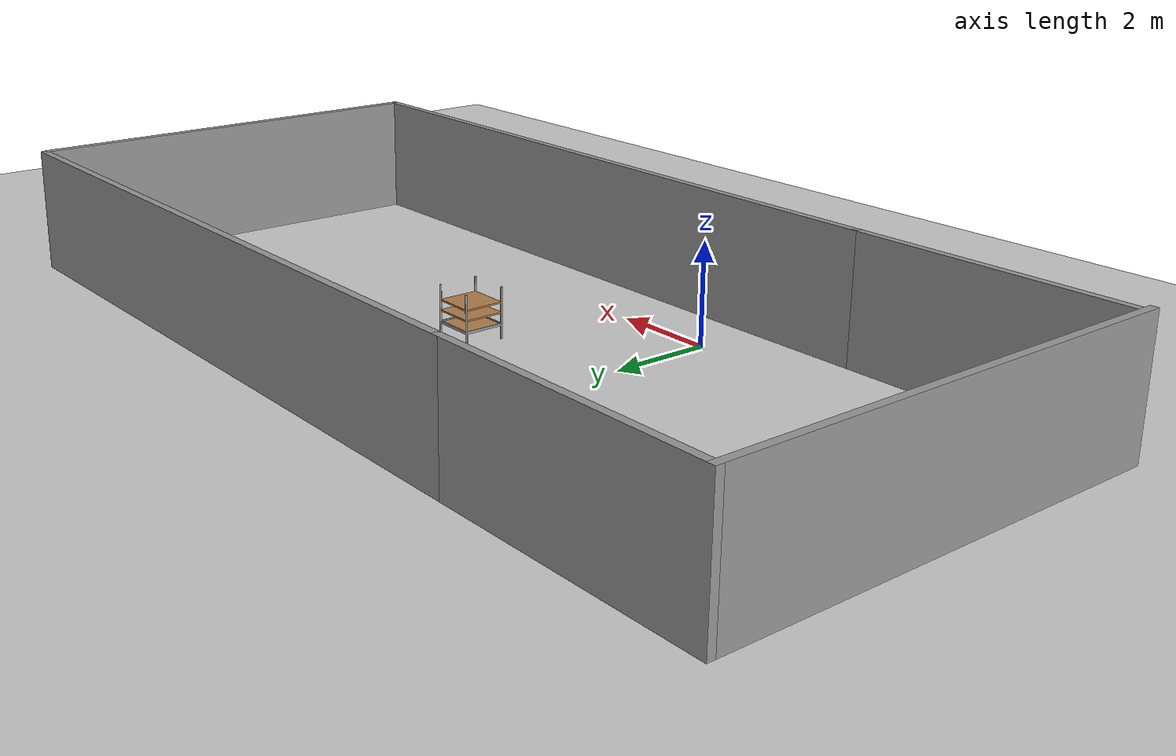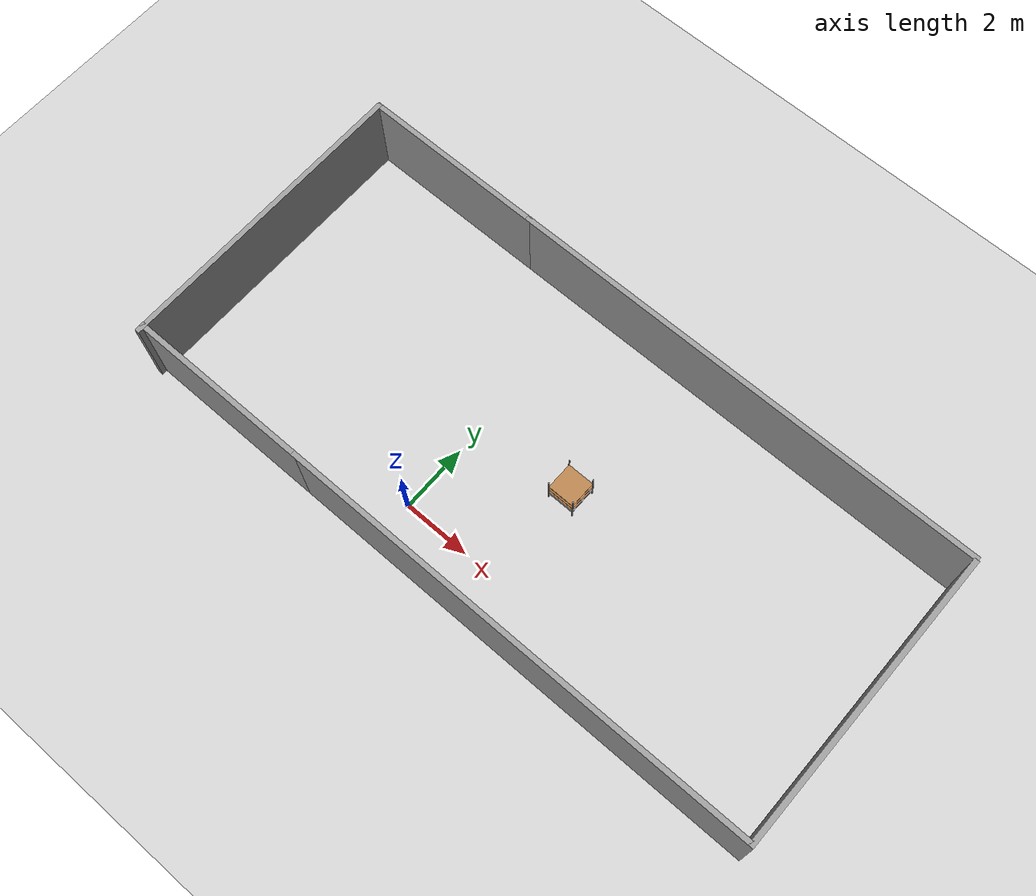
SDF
<sdf version="1.7">
 <world name="default">
  <model name="ground_plane">
   <static>1</static>
   <link name="link">
    <collision name="collision">
     <geometry><plane><normal>0 0 1</normal><size>100 100</size></plane></geometry>
     <surface><friction><ode><mu>100</mu><mu2>50</mu2></ode></friction></surface>
    </collision>
    <visual name="visual">
     <cast_shadows>0</cast_shadows>
     <geometry><plane><normal>0 0 1</normal><size>100 100</size></plane></geometry>
     <material>
      <script><uri>file://media/materials/scripts/gazebo.material</uri><name>Gazebo/Grey</name></script>
     </material>
    </visual>
   </link>
  </model>
  <model name="warehouse_pallet_modified_80_0_clone_2">
   <link name="warehouse_pallet::link">
    <pose>-0.115127 9.2e-05 0 0 -0 1.57</pose>
    <inertial>
     <inertia>
      <ixx>0.0267042</ixx>
      <ixy>0</ixy>
      <ixz>0</ixz>
      <iyy>0.0937875</iyy>
      <iyz>0</iyz>
      <izz>0.120417</izz>
     </inertia>
     <mass>0.5</mass>
    </inertial>
    <visual name="front_right_leg">
     <pose>0.4 -0.4 0.4 0 -0 0</pose>
     <geometry><cylinder><radius>0.02</radius><length>1</length></cylinder></geometry>
     <material>
      <script><uri>file://media/materials/scripts/gazebo.material</uri><name>Gazebo/Grey</name></script>
      <shader type="pixel"><normal_map>__default__</normal_map></shader>
      <ambient>0.3 0.3 0.3 1</ambient>
      <diffuse>0.7 0.7 0.7 1</diffuse>
      <specular>0.01 0.01 0.01 1</specular>
      <emissive>0 0 0 1</emissive>
     </material>
    </visual>
    <visual name="back_left_leg">
     <pose>-0.4 0.4 0.4 0 -0 0</pose>
     <geometry><cylinder><radius>0.02</radius><length>1</length></cylinder></geometry>
     <material>
      <script><uri>file://media/materials/scripts/gazebo.material</uri><name>Gazebo/Grey</name></script>
      <shader type="pixel"><normal_map>__default__</normal_map></shader>
      <ambient>0.3 0.3 0.3 1</ambient>
      <diffuse>0.7 0.7 0.7 1</diffuse>
      <specular>0.01 0.01 0.01 1</specular>
      <emissive>0 0 0 1</emissive>
     </material>
    </visual>
    <visual name="visual1">
     <pose>0 0 0.165 0 -0 0</pose>
     <geometry><box><size>0.8 0.8 0.03</size></box></geometry>
     <material>
      <script><uri>file://media/materials/scripts/gazebo.material</uri><name>Gazebo/Wood</name></script>
      <shader type="pixel"><normal_map>__default__</normal_map></shader>
      <ambient>1 1 1 1</ambient>
      <diffuse>1 1 1 1</diffuse>
      <specular>0.2 0.2 0.2 1</specular>
      <emissive>0 0 0 1</emissive>
     </material>
    </visual>
    <visual name="front_left_leg">
     <pose>0.4 0.4 0.4 0 -0 0</pose>
     <geometry><cylinder><radius>0.02</radius><length>1</length></cylinder></geometry>
     <material>
      <script><uri>file://media/materials/scripts/gazebo.material</uri><name>Gazebo/Grey</name></script>
      <shader type="pixel"><normal_map>__default__</normal_map></shader>
      <ambient>0.3 0.3 0.3 1</ambient>
      <diffuse>0.7 0.7 0.7 1</diffuse>
      <specular>0.01 0.01 0.01 1</specular>
      <emissive>0 0 0 1</emissive>
     </material>
    </visual>
    <visual name="holding2_visual">
     <pose>0 -0.4 0.175 0 -0 0</pose>
     <geometry><box><size>0.8 0.02 0.05</size></box></geometry>
     <material>
      <script><uri>file://media/materials/scripts/gazebo.material</uri><name>Gazebo/Grey</name></script>
      <shader type="pixel"><normal_map>__default__</normal_map></shader>
      <ambient>0.3 0.3 0.3 1</ambient>
      <diffuse>0.7 0.7 0.7 1</diffuse>
      <specular>0.01 0.01 0.01 1</specular>
      <emissive>0 0 0 1</emissive>
     </material>
    </visual>
    <visual name="visual2">
     <pose>0 0 0.4 0 -0 0</pose>
     <geometry><box><size>0.8 0.8 0.03</size></box></geometry>
     <material>
      <script><uri>file://media/materials/scripts/gazebo.material</uri><name>Gazebo/Wood</name></script>
      <shader type="pixel"><normal_map>__default__</normal_map></shader>
      <ambient>1 1 1 1</ambient>
      <diffuse>1 1 1 1</diffuse>
      <specular>0.2 0.2 0.2 1</specular>
      <emissive>0 0 0 1</emissive>
     </material>
    </visual>
    <visual name="holding4_visual">
     <pose>-0.4 0 0.175 0 -0 1.57</pose>
     <geometry><box><size>0.8 0.02 0.05</size></box></geometry>
     <material>
      <script><uri>file://media/materials/scripts/gazebo.material</uri><name>Gazebo/Grey</name></script>
      <shader type="pixel"><normal_map>__default__</normal_map></shader>
      <ambient>0.3 0.3 0.3 1</ambient>
      <diffuse>0.7 0.7 0.7 1</diffuse>
      <specular>0.01 0.01 0.01 1</specular>
      <emissive>0 0 0 1</emissive>
     </material>
    </visual>
    <visual name="holding1_visual">
     <pose>0 0.4 0.175 0 -0 0</pose>
     <geometry><box><size>0.8 0.02 0.05</size></box></geometry>
     <material>
      <script><uri>file://media/materials/scripts/gazebo.material</uri><name>Gazebo/Grey</name></script>
      <shader type="pixel"><normal_map>__default__</normal_map></shader>
      <ambient>0.3 0.3 0.3 1</ambient>
      <diffuse>0.7 0.7 0.7 1</diffuse>
      <specular>0.01 0.01 0.01 1</specular>
      <emissive>0 0 0 1</emissive>
     </material>
    </visual>
    <visual name="back_right_leg">
     <pose>-0.4 -0.4 0.4 0 -0 0</pose>
     <geometry><cylinder><radius>0.02</radius><length>1</length></cylinder></geometry>
     <material>
      <script><uri>file://media/materials/scripts/gazebo.material</uri><name>Gazebo/Grey</name></script>
      <shader type="pixel"><normal_map>__default__</normal_map></shader>
      <ambient>0.3 0.3 0.3 1</ambient>
      <diffuse>0.7 0.7 0.7 1</diffuse>
      <specular>0.01 0.01 0.01 1</specular>
      <emissive>0 0 0 1</emissive>
     </material>
    </visual>
    <visual name="visual3">
     <pose>0 0 0.6 0 -0 0</pose>
     <geometry><box><size>0.8 0.8 0.03</size></box></geometry>
     <material>
      <script><uri>file://media/materials/scripts/gazebo.material</uri><name>Gazebo/Wood</name></script>
      <shader type="pixel"><normal_map>__default__</normal_map></shader>
      <ambient>1 1 1 1</ambient>
      <diffuse>1 1 1 1</diffuse>
      <specular>0.2 0.2 0.2 1</specular>
      <emissive>0 0 0 1</emissive>
     </material>
    </visual>
    <visual name="holding3_visual">
     <pose>0.4 0 0.175 0 -0 1.57</pose>
     <geometry><box><size>0.8 0.02 0.05</size></box></geometry>
     <material>
      <script><uri>file://media/materials/scripts/gazebo.material</uri><name>Gazebo/Grey</name></script>
      <shader type="pixel"><normal_map>__default__</normal_map></shader>
      <ambient>0.3 0.3 0.3 1</ambient>
      <diffuse>0.7 0.7 0.7 1</diffuse>
      <specular>0.01 0.01 0.01 1</specular>
      <emissive>0 0 0 1</emissive>
     </material>
    </visual>
    <collision name="back_right_leg">
     <pose>-0.4 -0.4 0.4 0 -0 0</pose>
     <geometry><cylinder><radius>0.02</radius><length>1</length></cylinder></geometry>
     <surface>
      <friction>
       <ode><mu>1</mu><mu2>1</mu2><fdir1>0 0 0</fdir1><slip1>0</slip1><slip2>0</slip2></ode>
       <torsional>
        <coefficient>1</coefficient>
        <patch_radius>0</patch_radius>
        <surface_radius>0</surface_radius>
        <use_patch_radius>1</use_patch_radius>
        <ode><slip>0</slip></ode>
       </torsional>
      </friction>
      <bounce><restitution_coefficient>0</restitution_coefficient><threshold>1e+06</threshold></bounce>
      <contact>
       <collide_without_contact>0</collide_without_contact>
       <collide_without_contact_bitmask>1</collide_without_contact_bitmask>
       <collide_bitmask>1</collide_bitmask>
       <ode>
        <soft_cfm>0</soft_cfm>
        <soft_erp>0.2</soft_erp>
        <kp>1e+13</kp>
        <kd>1</kd>
        <max_vel>0.01</max_vel>
        <min_depth>0</min_depth>
       </ode>
       <bullet>
        <split_impulse>1</split_impulse>
        <split_impulse_penetration_threshold>-0.01</split_impulse_penetration_threshold>
        <soft_cfm>0</soft_cfm>
        <soft_erp>0.2</soft_erp>
        <kp>1e+13</kp>
        <kd>1</kd>
       </bullet>
      </contact>
     </surface>
    </collision>
    <collision name="holding2_collision">
     <pose>0 -0.4 0.175 0 -0 0</pose>
     <geometry><box><size>0.8 0.02 0.05</size></box></geometry>
     <surface>
      <friction>
       <ode><mu>1e+09</mu><mu2>1e+09</mu2><fdir1>0 0 0</fdir1><slip1>0</slip1><slip2>0</slip2></ode>
       <torsional>
        <coefficient>1</coefficient>
        <patch_radius>0</patch_radius>
        <surface_radius>0</surface_radius>
        <use_patch_radius>1</use_patch_radius>
        <ode><slip>0</slip></ode>
       </torsional>
      </friction>
      <bounce><restitution_coefficient>0</restitution_coefficient><threshold>1e+06</threshold></bounce>
      <contact>
       <collide_without_contact>0</collide_without_contact>
       <collide_without_contact_bitmask>1</collide_without_contact_bitmask>
       <collide_bitmask>1</collide_bitmask>
       <ode>
        <soft_cfm>0</soft_cfm>
        <soft_erp>0.2</soft_erp>
        <kp>1e+13</kp>
        <kd>1</kd>
        <max_vel>0.01</max_vel>
        <min_depth>0</min_depth>
       </ode>
       <bullet>
        <split_impulse>1</split_impulse>
        <split_impulse_penetration_threshold>-0.01</split_impulse_penetration_threshold>
        <soft_cfm>0</soft_cfm>
        <soft_erp>0.2</soft_erp>
        <kp>1e+13</kp>
        <kd>1</kd>
       </bullet>
      </contact>
     </surface>
    </collision>
    <collision name="holding4_collision">
     <pose>-0.4 0 0.175 0 -0 1.57</pose>
     <geometry><box><size>0.8 0.02 0.05</size></box></geometry>
     <surface>
      <friction>
       <ode><mu>1e+09</mu><mu2>1e+09</mu2><fdir1>0 0 0</fdir1><slip1>0</slip1><slip2>0</slip2></ode>
       <torsional>
        <coefficient>1</coefficient>
        <patch_radius>0</patch_radius>
        <surface_radius>0</surface_radius>
        <use_patch_radius>1</use_patch_radius>
        <ode><slip>0</slip></ode>
       </torsional>
      </friction>
      <bounce><restitution_coefficient>0</restitution_coefficient><threshold>1e+06</threshold></bounce>
      <contact>
       <collide_without_contact>0</collide_without_contact>
       <collide_without_contact_bitmask>1</collide_without_contact_bitmask>
       <collide_bitmask>1</collide_bitmask>
       <ode>
        <soft_cfm>0</soft_cfm>
        <soft_erp>0.2</soft_erp>
        <kp>1e+13</kp>
        <kd>1</kd>
        <max_vel>0.01</max_vel>
        <min_depth>0</min_depth>
       </ode>
       <bullet>
        <split_impulse>1</split_impulse>
        <split_impulse_penetration_threshold>-0.01</split_impulse_penetration_threshold>
        <soft_cfm>0</soft_cfm>
        <soft_erp>0.2</soft_erp>
        <kp>1e+13</kp>
        <kd>1</kd>
       </bullet>
      </contact>
     </surface>
    </collision>
    <collision name="front_right_leg">
     <pose>0.4 -0.4 0.4 0 -0 0</pose>
     <geometry><cylinder><radius>0.02</radius><length>1</length></cylinder></geometry>
     <surface>
      <friction>
       <ode><mu>1</mu><mu2>1.2</mu2><fdir1>0 0 0</fdir1><slip1>0</slip1><slip2>0</slip2></ode>
       <torsional>
        <coefficient>1</coefficient>
        <patch_radius>0</patch_radius>
        <surface_radius>0</surface_radius>
        <use_patch_radius>1</use_patch_radius>
        <ode><slip>0</slip></ode>
       </torsional>
      </friction>
      <bounce><restitution_coefficient>0</restitution_coefficient><threshold>1e+06</threshold></bounce>
      <contact>
       <collide_without_contact>0</collide_without_contact>
       <collide_without_contact_bitmask>1</collide_without_contact_bitmask>
       <collide_bitmask>1</collide_bitmask>
       <ode>
        <soft_cfm>0</soft_cfm>
        <soft_erp>0.2</soft_erp>
        <kp>1e+13</kp>
        <kd>1</kd>
        <max_vel>0.01</max_vel>
        <min_depth>0</min_depth>
       </ode>
       <bullet>
        <split_impulse>1</split_impulse>
        <split_impulse_penetration_threshold>-0.01</split_impulse_penetration_threshold>
        <soft_cfm>0</soft_cfm>
        <soft_erp>0.2</soft_erp>
        <kp>1e+13</kp>
        <kd>1</kd>
       </bullet>
      </contact>
     </surface>
    </collision>
    <collision name="surface3">
     <pose>0 0 0.6 0 -0 0</pose>
     <geometry><box><size>0.8 0.8 0.03</size></box></geometry>
     <surface>
      <friction>
       <ode><mu>2.5</mu><mu2>2.5</mu2><fdir1>0 0 0</fdir1><slip1>0</slip1><slip2>0</slip2></ode>
       <torsional>
        <coefficient>1</coefficient>
        <patch_radius>0</patch_radius>
        <surface_radius>0</surface_radius>
        <use_patch_radius>1</use_patch_radius>
        <ode><slip>0</slip></ode>
       </torsional>
      </friction>
      <bounce><restitution_coefficient>0</restitution_coefficient><threshold>1e+06</threshold></bounce>
      <contact>
       <collide_without_contact>0</collide_without_contact>
       <collide_without_contact_bitmask>1</collide_without_contact_bitmask>
       <collide_bitmask>1</collide_bitmask>
       <ode>
        <soft_cfm>0</soft_cfm>
        <soft_erp>0.2</soft_erp>
        <kp>1e+13</kp>
        <kd>1</kd>
        <max_vel>0.01</max_vel>
        <min_depth>0</min_depth>
       </ode>
       <bullet>
        <split_impulse>1</split_impulse>
        <split_impulse_penetration_threshold>-0.01</split_impulse_penetration_threshold>
        <soft_cfm>0</soft_cfm>
        <soft_erp>0.2</soft_erp>
        <kp>1e+13</kp>
        <kd>1</kd>
       </bullet>
      </contact>
     </surface>
    </collision>
    <collision name="surface1">
     <pose>0 0 0.165 0 -0 0</pose>
     <geometry><box><size>0.8 0.8 0.03</size></box></geometry>
     <surface>
      <friction>
       <ode><mu>20</mu><mu2>20</mu2><fdir1>0 0 0</fdir1><slip1>0</slip1><slip2>0</slip2></ode>
       <torsional>
        <coefficient>1</coefficient>
        <patch_radius>0</patch_radius>
        <surface_radius>0</surface_radius>
        <use_patch_radius>1</use_patch_radius>
        <ode><slip>0</slip></ode>
       </torsional>
      </friction>
      <bounce><restitution_coefficient>0</restitution_coefficient><threshold>1e+06</threshold></bounce>
      <contact>
       <collide_without_contact>0</collide_without_contact>
       <collide_without_contact_bitmask>1</collide_without_contact_bitmask>
       <collide_bitmask>1</collide_bitmask>
       <ode>
        <soft_cfm>0</soft_cfm>
        <soft_erp>0.2</soft_erp>
        <kp>1e+13</kp>
        <kd>1</kd>
        <max_vel>0.01</max_vel>
        <min_depth>0</min_depth>
       </ode>
       <bullet>
        <split_impulse>1</split_impulse>
        <split_impulse_penetration_threshold>-0.01</split_impulse_penetration_threshold>
        <soft_cfm>0</soft_cfm>
        <soft_erp>0.2</soft_erp>
        <kp>1e+13</kp>
        <kd>1</kd>
       </bullet>
      </contact>
     </surface>
    </collision>
    <collision name="holding1_collision">
     <pose>0 0.4 0.175 0 -0 0</pose>
     <geometry><box><size>0.8 0.02 0.05</size></box></geometry>
     <surface>
      <friction>
       <ode><mu>1e+09</mu><mu2>1e+09</mu2><fdir1>0 0 0</fdir1><slip1>0</slip1><slip2>0</slip2></ode>
       <torsional>
        <coefficient>1</coefficient>
        <patch_radius>0</patch_radius>
        <surface_radius>0</surface_radius>
        <use_patch_radius>1</use_patch_radius>
        <ode><slip>0</slip></ode>
       </torsional>
      </friction>
      <bounce><restitution_coefficient>0</restitution_coefficient><threshold>1e+06</threshold></bounce>
      <contact>
       <collide_without_contact>0</collide_without_contact>
       <collide_without_contact_bitmask>1</collide_without_contact_bitmask>
       <collide_bitmask>1</collide_bitmask>
       <ode>
        <soft_cfm>0</soft_cfm>
        <soft_erp>0.2</soft_erp>
        <kp>1e+13</kp>
        <kd>1</kd>
        <max_vel>0.01</max_vel>
        <min_depth>0</min_depth>
       </ode>
       <bullet>
        <split_impulse>1</split_impulse>
        <split_impulse_penetration_threshold>-0.01</split_impulse_penetration_threshold>
        <soft_cfm>0</soft_cfm>
        <soft_erp>0.2</soft_erp>
        <kp>1e+13</kp>
        <kd>1</kd>
       </bullet>
      </contact>
     </surface>
    </collision>
    <collision name="back_left_leg">
     <pose>-0.4 0.4 0.4 0 -0 0</pose>
     <geometry><cylinder><radius>0.02</radius><length>1</length></cylinder></geometry>
     <surface>
      <friction>
       <ode><mu>1</mu><mu2>1</mu2><fdir1>0 0 0</fdir1><slip1>0</slip1><slip2>0</slip2></ode>
       <torsional>
        <coefficient>1</coefficient>
        <patch_radius>0</patch_radius>
        <surface_radius>0</surface_radius>
        <use_patch_radius>1</use_patch_radius>
        <ode><slip>0</slip></ode>
       </torsional>
      </friction>
      <bounce><restitution_coefficient>0</restitution_coefficient><threshold>1e+06</threshold></bounce>
      <contact>
       <collide_without_contact>0</collide_without_contact>
       <collide_without_contact_bitmask>1</collide_without_contact_bitmask>
       <collide_bitmask>1</collide_bitmask>
       <ode>
        <soft_cfm>0</soft_cfm>
        <soft_erp>0.2</soft_erp>
        <kp>1e+13</kp>
        <kd>1</kd>
        <max_vel>0.01</max_vel>
        <min_depth>0</min_depth>
       </ode>
       <bullet>
        <split_impulse>1</split_impulse>
        <split_impulse_penetration_threshold>-0.01</split_impulse_penetration_threshold>
        <soft_cfm>0</soft_cfm>
        <soft_erp>0.2</soft_erp>
        <kp>1e+13</kp>
        <kd>1</kd>
       </bullet>
      </contact>
     </surface>
    </collision>
    <collision name="holding3_collision">
     <pose>0.4 0 0.175 0 -0 1.57</pose>
     <geometry><box><size>0.8 0.02 0.05</size></box></geometry>
     <surface>
      <friction>
       <ode><mu>1e+09</mu><mu2>1e+09</mu2><fdir1>0 0 0</fdir1><slip1>0</slip1><slip2>0</slip2></ode>
       <torsional>
        <coefficient>1</coefficient>
        <patch_radius>0</patch_radius>
        <surface_radius>0</surface_radius>
        <use_patch_radius>1</use_patch_radius>
        <ode><slip>0</slip></ode>
       </torsional>
      </friction>
      <bounce><restitution_coefficient>0</restitution_coefficient><threshold>1e+06</threshold></bounce>
      <contact>
       <collide_without_contact>0</collide_without_contact>
       <collide_without_contact_bitmask>1</collide_without_contact_bitmask>
       <collide_bitmask>1</collide_bitmask>
       <ode>
        <soft_cfm>0</soft_cfm>
        <soft_erp>0.2</soft_erp>
        <kp>1e+13</kp>
        <kd>1</kd>
        <max_vel>0.01</max_vel>
        <min_depth>0</min_depth>
       </ode>
       <bullet>
        <split_impulse>1</split_impulse>
        <split_impulse_penetration_threshold>-0.01</split_impulse_penetration_threshold>
        <soft_cfm>0</soft_cfm>
        <soft_erp>0.2</soft_erp>
        <kp>1e+13</kp>
        <kd>1</kd>
       </bullet>
      </contact>
     </surface>
    </collision>
    <collision name="surface2">
     <pose>0 0 0.4 0 -0 0</pose>
     <geometry><box><size>0.8 0.8 0.03</size></box></geometry>
     <surface>
      <friction>
       <ode><mu>2.5</mu><mu2>2.5</mu2><fdir1>0 0 0</fdir1><slip1>0</slip1><slip2>0</slip2></ode>
       <torsional>
        <coefficient>1</coefficient>
        <patch_radius>0</patch_radius>
        <surface_radius>0</surface_radius>
        <use_patch_radius>1</use_patch_radius>
        <ode><slip>0</slip></ode>
       </torsional>
      </friction>
      <bounce><restitution_coefficient>0</restitution_coefficient><threshold>1e+06</threshold></bounce>
      <contact>
       <collide_without_contact>0</collide_without_contact>
       <collide_without_contact_bitmask>1</collide_without_contact_bitmask>
       <collide_bitmask>1</collide_bitmask>
       <ode>
        <soft_cfm>0</soft_cfm>
        <soft_erp>0.2</soft_erp>
        <kp>1e+13</kp>
        <kd>1</kd>
        <max_vel>0.01</max_vel>
        <min_depth>0</min_depth>
       </ode>
       <bullet>
        <split_impulse>1</split_impulse>
        <split_impulse_penetration_threshold>-0.01</split_impulse_penetration_threshold>
        <soft_cfm>0</soft_cfm>
        <soft_erp>0.2</soft_erp>
        <kp>1e+13</kp>
        <kd>1</kd>
       </bullet>
      </contact>
     </surface>
    </collision>
    <collision name="front_left_leg">
     <pose>0.4 0.4 0.4 0 -0 0</pose>
     <geometry><cylinder><radius>0.02</radius><length>1</length></cylinder></geometry>
     <surface>
      <friction>
       <ode><mu>1</mu><mu2>1</mu2><fdir1>0 0 0</fdir1><slip1>0</slip1><slip2>0</slip2></ode>
       <torsional>
        <coefficient>1</coefficient>
        <patch_radius>0</patch_radius>
        <surface_radius>0</surface_radius>
        <use_patch_radius>1</use_patch_radius>
        <ode><slip>0</slip></ode>
       </torsional>
      </friction>
      <bounce><restitution_coefficient>0</restitution_coefficient><threshold>1e+06</threshold></bounce>
      <contact>
       <collide_without_contact>0</collide_without_contact>
       <collide_without_contact_bitmask>1</collide_without_contact_bitmask>
       <collide_bitmask>1</collide_bitmask>
       <ode>
        <soft_cfm>0</soft_cfm>
        <soft_erp>0.2</soft_erp>
        <kp>1e+13</kp>
        <kd>1</kd>
        <max_vel>0.01</max_vel>
        <min_depth>0</min_depth>
       </ode>
       <bullet>
        <split_impulse>1</split_impulse>
        <split_impulse_penetration_threshold>-0.01</split_impulse_penetration_threshold>
        <soft_cfm>0</soft_cfm>
        <soft_erp>0.2</soft_erp>
        <kp>1e+13</kp>
        <kd>1</kd>
       </bullet>
      </contact>
     </surface>
    </collision>
   </link>
   <static>0</static>
   <pose>3.08715 2.98136 0.099988 0 2.3e-05 -0.000231</pose>
  </model>
  <model name="Warehouse">
   <pose>2.14751 2.945 0 0 -0 0</pose>
   <link name="Wall_0">
    <collision name="Wall_0_Collision">
     <geometry><box><size>14.285 0.15 2.5</size></box></geometry>
     <pose>0 0 1.25 0 -0 0</pose>
    </collision>
    <visual name="Wall_0_Visual">
     <pose>0 0 1.25 0 -0 0</pose>
     <geometry><box><size>14.285 0.15 2.5</size></box></geometry>
     <material>
      <script><uri>file://media/materials/scripts/gazebo.material</uri><name>Gazebo/Grey</name></script>
      <ambient>1 1 1 1</ambient>
     </material>
     <meta><layer>0</layer></meta>
    </visual>
    <pose>2.675 -4.275 0 0 -0 0</pose>
   </link>
   <link name="Wall_11">
    <collision name="Wall_11_Collision">
     <geometry><box><size>8.75 0.15 2.5</size></box></geometry>
     <pose>0 0 1.25 0 -0 0</pose>
    </collision>
    <visual name="Wall_11_Visual">
     <pose>0 0 1.25 0 -0 0</pose>
     <geometry><box><size>8.75 0.15 2.5</size></box></geometry>
     <material>
      <script><uri>file://media/materials/scripts/gazebo.material</uri><name>Gazebo/Grey</name></script>
      <ambient>1 1 1 1</ambient>
     </material>
     <meta><layer>0</layer></meta>
    </visual>
    <pose>9.74249 0.025 0 0 -0 1.5708</pose>
   </link>
   <link name="Wall_13">
    <collision name="Wall_13_Collision">
     <geometry><box><size>14.25 0.15 2.5</size></box></geometry>
     <pose>0 0 1.25 0 -0 0</pose>
    </collision>
    <visual name="Wall_13_Visual">
     <pose>0 0 1.25 0 -0 0</pose>
     <geometry><box><size>14.25 0.15 2.5</size></box></geometry>
     <material>
      <script><uri>file://media/materials/scripts/gazebo.material</uri><name>Gazebo/Grey</name></script>
      <ambient>1 1 1 1</ambient>
     </material>
     <meta><layer>0</layer></meta>
    </visual>
    <pose>2.65751 4.425 0 0 -0 0</pose>
   </link>
   <link name="Wall_15">
    <collision name="Wall_15_Collision">
     <geometry><box><size>5.5 0.15 2.5</size></box></geometry>
     <pose>0 0 1.25 0 -0 0</pose>
    </collision>
    <visual name="Wall_15_Visual">
     <pose>0 0 1.25 0 -0 0</pose>
     <geometry><box><size>5.5 0.15 2.5</size></box></geometry>
     <material>
      <script><uri>file://media/materials/scripts/gazebo.material</uri><name>Gazebo/Grey</name></script>
      <ambient>1 1 1 1</ambient>
     </material>
     <meta><layer>0</layer></meta>
    </visual>
    <pose>-7.06749 4.425 0 0 -0 3.14159</pose>
   </link>
   <link name="Wall_16">
    <collision name="Wall_16_Collision">
     <geometry><box><size>9 0.15 2.5</size></box></geometry>
     <pose>0 0 1.25 0 -0 0</pose>
    </collision>
    <visual name="Wall_16_Visual">
     <pose>0 0 1.25 0 -0 0</pose>
     <geometry><box><size>9 0.15 2.5</size></box></geometry>
     <material>
      <script><uri>file://media/materials/scripts/gazebo.material</uri><name>Gazebo/Grey</name></script>
      <ambient>1 1 1 1</ambient>
     </material>
     <meta><layer>0</layer></meta>
    </visual>
    <pose>-9.74249 -0 0 0 -0 -1.5708</pose>
   </link>
   <link name="Wall_18">
    <collision name="Wall_18_Collision">
     <geometry><box><size>5.5 0.15 2.5</size></box></geometry>
     <pose>0 0 1.25 0 -0 0</pose>
    </collision>
    <visual name="Wall_18_Visual">
     <pose>0 0 1.25 0 -0 0</pose>
     <geometry><box><size>5.5 0.15 2.5</size></box></geometry>
     <material>
      <script><uri>file://media/materials/scripts/gazebo.material</uri><name>Gazebo/Grey</name></script>
      <ambient>1 1 1 1</ambient>
     </material>
     <meta><layer>0</layer></meta>
    </visual>
    <pose>-7.06749 -4.275 0 0 -0 3.14159</pose>
   </link>
   <static>1</static>
  </model>
 </world>
</sdf>
